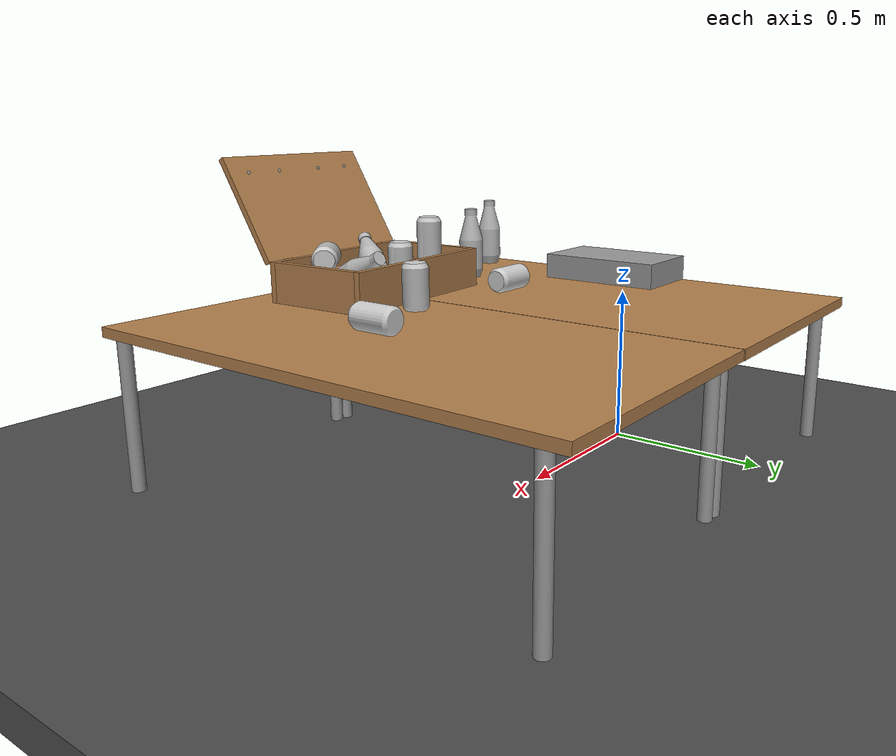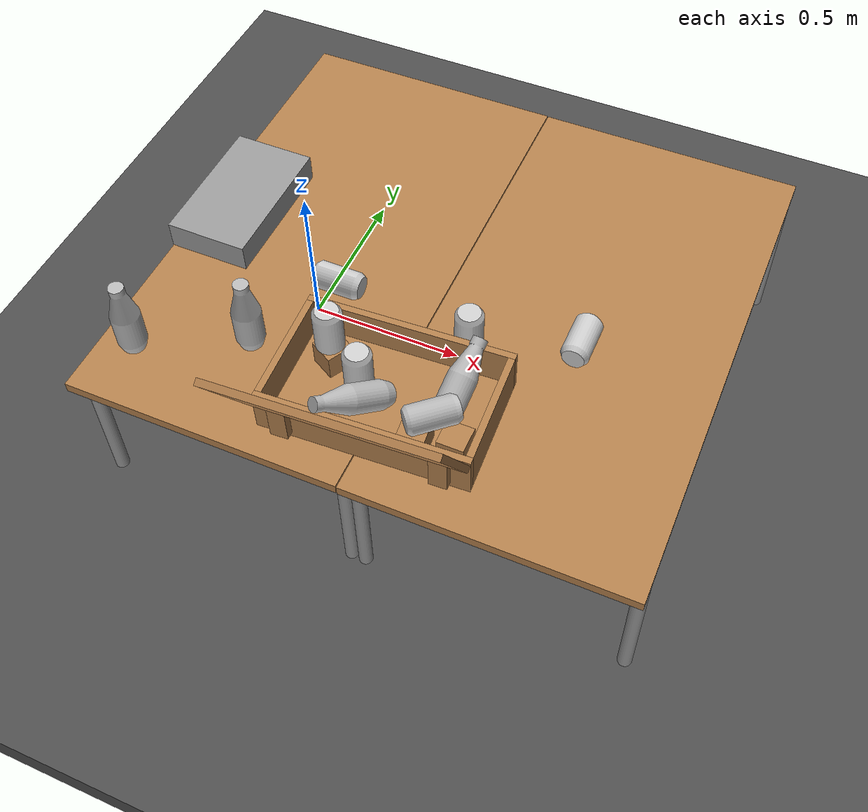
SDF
<sdf version="1.6">
 <world name="default">
  <model name="ground_plane">
   <static>1</static>
   <link name="link">
    <collision name="collision">
     <geometry><plane><normal>0 0 1</normal><size>100 100</size></plane></geometry>
     <surface><friction><ode><mu>100</mu><mu2>50</mu2></ode></friction></surface>
    </collision>
    <visual name="visual">
     <cast_shadows>0</cast_shadows>
     <geometry><plane><normal>0 0 1</normal><size>100 100</size></plane></geometry>
     <material>
      <script><uri>file://media/materials/scripts/gazebo.material</uri><name>Gazebo/Grey</name></script>
     </material>
    </visual>
   </link>
  </model>
  <model name="table">
   <static>1</static>
   <link name="link">
    <collision name="surface">
     <pose>0 0 0.5 0 -0 0</pose>
     <geometry><box><size>1.5 0.8 0.03</size></box></geometry>
     <surface><friction><ode><mu>0.6</mu><mu2>0.6</mu2></ode></friction></surface>
    </collision>
    <visual name="visual1">
     <pose>0 0 0.5 0 -0 0</pose>
     <geometry><box><size>1.5 0.8 0.03</size></box></geometry>
     <material>
      <script><uri>file://media/materials/scripts/gazebo.material</uri><name>Gazebo/Wood</name></script>
     </material>
    </visual>
    <collision name="front_left_leg">
     <pose>0.68 0.38 0.25 0 -0 0</pose>
     <geometry><cylinder><radius>0.02</radius><length>0.5</length></cylinder></geometry>
    </collision>
    <visual name="front_left_leg">
     <pose>0.68 0.38 0.25 0 -0 0</pose>
     <geometry><cylinder><radius>0.02</radius><length>0.5</length></cylinder></geometry>
     <material>
      <script><uri>file://media/materials/scripts/gazebo.material</uri><name>Gazebo/Grey</name></script>
     </material>
    </visual>
    <collision name="front_right_leg">
     <pose>0.68 -0.38 0.25 0 -0 0</pose>
     <geometry><cylinder><radius>0.02</radius><length>0.5</length></cylinder></geometry>
    </collision>
    <visual name="front_right_leg">
     <pose>0.68 -0.38 0.25 0 -0 0</pose>
     <geometry><cylinder><radius>0.02</radius><length>0.5</length></cylinder></geometry>
     <material>
      <script><uri>file://media/materials/scripts/gazebo.material</uri><name>Gazebo/Grey</name></script>
     </material>
    </visual>
    <collision name="back_right_leg">
     <pose>-0.68 -0.38 0.25 0 -0 0</pose>
     <geometry><cylinder><radius>0.02</radius><length>0.5</length></cylinder></geometry>
    </collision>
    <visual name="back_right_leg">
     <pose>-0.68 -0.38 0.25 0 -0 0</pose>
     <geometry><cylinder><radius>0.02</radius><length>0.5</length></cylinder></geometry>
     <material>
      <script><uri>file://media/materials/scripts/gazebo.material</uri><name>Gazebo/Grey</name></script>
     </material>
    </visual>
    <collision name="back_left_leg">
     <pose>-0.68 0.38 0.25 0 -0 0</pose>
     <geometry><cylinder><radius>0.02</radius><length>0.5</length></cylinder></geometry>
    </collision>
    <visual name="back_left_leg">
     <pose>-0.68 0.38 0.25 0 -0 0</pose>
     <geometry><cylinder><radius>0.02</radius><length>0.5</length></cylinder></geometry>
     <material>
      <script><uri>file://media/materials/scripts/gazebo.material</uri><name>Gazebo/Grey</name></script>
     </material>
    </visual>
   </link>
   <pose>0.141486 -0.111698 0 0 -0 1.57274</pose>
  </model>
  <model name="asphalt_plane">
   <static>1</static>
   <link name="link">
    <collision name="collision"><geometry><box><size>20 20 0.1</size></box></geometry></collision>
    <visual name="visual">
     <cast_shadows>0</cast_shadows>
     <geometry><box><size>20 20 0.1</size></box></geometry>
     <material>
      <script>
       <uri>model://asphalt_plane/materials/scripts</uri>
       <uri>model://asphalt_plane/materials/textures</uri>
       <name>vrc/asphalt</name>
      </script>
     </material>
    </visual>
   </link>
   <pose>-0.591173 -0.829147 0 0 -0 0</pose>
  </model>
  <model name="unit_box">
   <static>1</static>
   <pose>-0.139333 -0.111698 0.545396 0 -0 0</pose>
   <link name="link">
    <inertial>
     <mass>1</mass>
     <inertia>
      <ixx>0.166667</ixx>
      <ixy>0</ixy>
      <ixz>0</ixz>
      <iyy>0.166667</iyy>
      <iyz>0</iyz>
      <izz>0.166667</izz>
     </inertia>
    </inertial>
    <visual name="visual">
     <geometry><box><size>0.241277 0.407907 0.103712</size></box></geometry>
     <material>
      <script><name>Gazebo/Grey</name><uri>file://media/materials/scripts/gazebo.material</uri></script>
     </material>
    </visual>
   </link>
   <scale>0.241277 0.407907 0.103712</scale>
   <pose>-0.139333 -0.111698 0.545396 0 -0 0</pose>
  </model>
  <model name="wooden_case">
   <link name="base">
    <pose>0 0 0.024 0 -0 0</pose>
    <inertial>
     <pose>-0.022184 0 0.171592 0 -0 0</pose>
     <mass>3.96264</mass>
     <inertia>
      <ixx>0.213536</ixx>
      <ixy>0</ixy>
      <ixz>0.000779377</ixz>
      <iyy>0.0708943</iyy>
      <iyz>0</iyz>
      <izz>0.154604</izz>
     </inertia>
    </inertial>
    <collision name="collision_back">
     <pose>-0.053975 0 0.1778 0 -0 0</pose>
     <geometry><box><size>0.01905 0.5461 0.3175</size></box></geometry>
     <surface>
      <contact>
       <poissons_ratio>0.347</poissons_ratio>
       <elastic_modulus>8.8e+09</elastic_modulus>
       <ode><kp>100000</kp><kd>100</kd><max_vel>100</max_vel><min_depth>0.001</min_depth></ode>
      </contact>
      <friction>
       <ode><mu>3</mu><mu2>3</mu2></ode>
       <torsional>
        <coefficient>1</coefficient>
        <use_patch_radius>0</use_patch_radius>
        <surface_radius>0.01</surface_radius>
       </torsional>
      </friction>
     </surface>
    </collision>
    <visual name="visual_back">
     <pose>-0.053975 0 0.1778 0 -0 0</pose>
     <geometry><box><size>0.01905 0.5461 0.3175</size></box></geometry>
     <material>
      <script><uri>file://media/materials/scripts/gazebo.material</uri><name>Gazebo/Wood</name></script>
     </material>
    </visual>
    <collision name="collision_bottom">
     <pose>0 0 0.009525 0 -0 0</pose>
     <geometry><box><size>0.127 0.5842 0.01905</size></box></geometry>
     <surface>
      <contact>
       <poissons_ratio>0.347</poissons_ratio>
       <elastic_modulus>8.8e+09</elastic_modulus>
       <ode><kp>100000</kp><kd>100</kd><max_vel>100</max_vel><min_depth>0.001</min_depth></ode>
      </contact>
      <friction>
       <torsional>
        <coefficient>1</coefficient>
        <use_patch_radius>0</use_patch_radius>
        <surface_radius>0.01</surface_radius>
       </torsional>
      </friction>
     </surface>
    </collision>
    <visual name="visual_bottom">
     <pose>0 0 0.009525 0 -0 0</pose>
     <geometry><box><size>0.127 0.5842 0.01905</size></box></geometry>
     <material>
      <script><uri>file://media/materials/scripts/gazebo.material</uri><name>Gazebo/Wood</name></script>
     </material>
    </visual>
    <collision name="collision_top">
     <pose>0 0 0.346075 0 -0 0</pose>
     <geometry><box><size>0.127 0.5842 0.01905</size></box></geometry>
     <surface>
      <contact>
       <poissons_ratio>0.347</poissons_ratio>
       <elastic_modulus>8.8e+09</elastic_modulus>
       <ode><kp>100000</kp><kd>100</kd><max_vel>100</max_vel><min_depth>0.001</min_depth></ode>
      </contact>
      <friction>
       <torsional>
        <coefficient>1</coefficient>
        <use_patch_radius>0</use_patch_radius>
        <surface_radius>0.01</surface_radius>
       </torsional>
      </friction>
     </surface>
    </collision>
    <visual name="visual_top">
     <pose>0 0 0.346075 0 -0 0</pose>
     <geometry><box><size>0.127 0.5842 0.01905</size></box></geometry>
     <material>
      <script><uri>file://media/materials/scripts/gazebo.material</uri><name>Gazebo/Wood</name></script>
     </material>
    </visual>
    <collision name="collision_left">
     <pose>0 -0.282575 0.1778 0 -0 0</pose>
     <geometry><box><size>0.127 0.01905 0.3175</size></box></geometry>
     <surface>
      <contact>
       <poissons_ratio>0.347</poissons_ratio>
       <elastic_modulus>8.8e+09</elastic_modulus>
       <ode><kp>100000</kp><kd>100</kd><max_vel>100</max_vel><min_depth>0.001</min_depth></ode>
      </contact>
      <friction>
       <torsional>
        <coefficient>1</coefficient>
        <use_patch_radius>0</use_patch_radius>
        <surface_radius>0.01</surface_radius>
       </torsional>
      </friction>
     </surface>
    </collision>
    <visual name="visual_left">
     <pose>0 -0.282575 0.1778 0 -0 0</pose>
     <geometry><box><size>0.127 0.01905 0.3175</size></box></geometry>
     <material>
      <script><uri>file://media/materials/scripts/gazebo.material</uri><name>Gazebo/Wood</name></script>
     </material>
    </visual>
    <collision name="collision_right">
     <pose>0 0.282575 0.1778 0 -0 0</pose>
     <geometry><box><size>0.127 0.01905 0.3175</size></box></geometry>
     <surface>
      <contact>
       <poissons_ratio>0.347</poissons_ratio>
       <elastic_modulus>8.8e+09</elastic_modulus>
       <ode><kp>100000</kp><kd>100</kd><max_vel>100</max_vel><min_depth>0.001</min_depth></ode>
      </contact>
      <friction>
       <torsional>
        <coefficient>1</coefficient>
        <use_patch_radius>0</use_patch_radius>
        <surface_radius>0.01</surface_radius>
       </torsional>
      </friction>
     </surface>
    </collision>
    <visual name="visual_right">
     <pose>0 0.282575 0.1778 0 -0 0</pose>
     <geometry><box><size>0.127 0.01905 0.3175</size></box></geometry>
     <material>
      <script><uri>file://media/materials/scripts/gazebo.material</uri><name>Gazebo/Wood</name></script>
     </material>
    </visual>
    <collision name="collision_block_left">
     <pose>0.0095 -0.2151 -0.012 0 -0 0</pose>
     <geometry><box><size>0.108 0.05 0.024</size></box></geometry>
     <surface>
      <contact>
       <poissons_ratio>0.347</poissons_ratio>
       <elastic_modulus>8.8e+09</elastic_modulus>
       <ode><kp>100000</kp><kd>100</kd><max_vel>100</max_vel><min_depth>0.001</min_depth></ode>
      </contact>
      <friction>
       <torsional>
        <coefficient>1</coefficient>
        <use_patch_radius>0</use_patch_radius>
        <surface_radius>0.01</surface_radius>
       </torsional>
      </friction>
     </surface>
    </collision>
    <visual name="visual_block_left">
     <pose>0.0095 -0.2151 -0.012 0 -0 0</pose>
     <geometry><box><size>0.108 0.05 0.024</size></box></geometry>
     <material>
      <script><uri>file://media/materials/scripts/gazebo.material</uri><name>Gazebo/Wood</name></script>
     </material>
    </visual>
    <collision name="collision_block_right">
     <pose>0.0095 0.2151 -0.012 0 -0 0</pose>
     <geometry><box><size>0.108 0.05 0.024</size></box></geometry>
     <surface>
      <contact>
       <poissons_ratio>0.347</poissons_ratio>
       <elastic_modulus>8.8e+09</elastic_modulus>
       <ode><kp>100000</kp><kd>100</kd><max_vel>100</max_vel><min_depth>0.001</min_depth></ode>
      </contact>
      <friction>
       <torsional>
        <coefficient>1</coefficient>
        <use_patch_radius>0</use_patch_radius>
        <surface_radius>0.01</surface_radius>
       </torsional>
      </friction>
     </surface>
    </collision>
    <visual name="visual_block_right">
     <pose>0.0095 0.2151 -0.012 0 -0 0</pose>
     <geometry><box><size>0.108 0.05 0.024</size></box></geometry>
     <material>
      <script><uri>file://media/materials/scripts/gazebo.material</uri><name>Gazebo/Wood</name></script>
     </material>
    </visual>
   </link>
   <link name="lid">
    <pose>0.210430 0.000001 -0.076823 0 0.523601 0</pose>
    <inertial>
     <mass>1.97874</mass>
     <inertia>
      <ixx>0.0563367</ixx>
      <ixy>0</ixy>
      <ixz>0</ixz>
      <iyy>0.020911</iyy>
      <iyz>0</iyz>
      <izz>0.0771281</izz>
     </inertia>
    </inertial>
    <collision name="collision">
     <geometry><box><size>0.3556 0.5842 0.01905</size></box></geometry>
     <surface>
      <contact>
       <poissons_ratio>0.347</poissons_ratio>
       <elastic_modulus>8.8e+09</elastic_modulus>
       <ode><kp>100000</kp><kd>100</kd><max_vel>100</max_vel><min_depth>0.001</min_depth></ode>
      </contact>
      <friction>
       <torsional>
        <coefficient>1</coefficient>
        <use_patch_radius>0</use_patch_radius>
        <surface_radius>0.01</surface_radius>
       </torsional>
      </friction>
     </surface>
    </collision>
    <visual name="visual">
     <geometry><box><size>0.3556 0.5842 0.01905</size></box></geometry>
     <material>
      <script><uri>file://media/materials/scripts/gazebo.material</uri><name>Gazebo/Wood</name></script>
     </material>
    </visual>
    <visual name="tee_nut_1">
     <pose>0.122 -0.216 0 0 -0 0</pose>
     <geometry><cylinder><radius>0.00635</radius><length>0.0192405</length></cylinder></geometry>
     <material>
      <script><uri>file://media/materials/scripts/gazebo.material</uri><name>Gazebo/Grey</name></script>
     </material>
    </visual>
    <visual name="tee_nut_2">
     <pose>0.122 -0.088 0 0 -0 0</pose>
     <geometry><cylinder><radius>0.00635</radius><length>0.0192405</length></cylinder></geometry>
     <material>
      <script><uri>file://media/materials/scripts/gazebo.material</uri><name>Gazebo/Grey</name></script>
     </material>
    </visual>
    <visual name="tee_nut_3">
     <pose>0.122 0.088 0 0 -0 0</pose>
     <geometry><cylinder><radius>0.00635</radius><length>0.0192405</length></cylinder></geometry>
     <material>
      <script><uri>file://media/materials/scripts/gazebo.material</uri><name>Gazebo/Grey</name></script>
     </material>
    </visual>
    <visual name="tee_nut_4">
     <pose>0.122 0.216 0 0 -0 0</pose>
     <geometry><cylinder><radius>0.00635</radius><length>0.0192405</length></cylinder></geometry>
     <material>
      <script><uri>file://media/materials/scripts/gazebo.material</uri><name>Gazebo/Grey</name></script>
     </material>
    </visual>
   </link>
   <joint name="lid_hinge" type="revolute">
    <pose>-0.1778 0 0.01905 0 -0 0</pose>
    <parent>base</parent>
    <child>lid</child>
    <axis>
     <xyz>0 1 0</xyz>
     <limit><upper>0.523599</upper><lower>-1.5708</lower></limit>
     <use_parent_model_frame>0</use_parent_model_frame>
     <dynamics><spring_reference>0</spring_reference><spring_stiffness>0</spring_stiffness></dynamics>
    </axis>
   </joint>
   <pose>0.566348 -0.782215 0.577462 -0.072879 -1.57073 -1.44241</pose>
  </model>
  <model name="table_clone">
   <static>1</static>
   <link name="link">
    <collision name="surface">
     <pose>0 0 0.5 0 -0 0</pose>
     <geometry><box><size>1.5 0.8 0.03</size></box></geometry>
     <surface><friction><ode><mu>0.6</mu><mu2>0.6</mu2></ode></friction></surface>
    </collision>
    <visual name="visual1">
     <pose>0 0 0.5 0 -0 0</pose>
     <geometry><box><size>1.5 0.8 0.03</size></box></geometry>
     <material>
      <script><uri>file://media/materials/scripts/gazebo.material</uri><name>Gazebo/Wood</name></script>
     </material>
    </visual>
    <collision name="front_left_leg">
     <pose>0.68 0.38 0.25 0 -0 0</pose>
     <geometry><cylinder><radius>0.02</radius><length>0.5</length></cylinder></geometry>
    </collision>
    <visual name="front_left_leg">
     <pose>0.68 0.38 0.25 0 -0 0</pose>
     <geometry><cylinder><radius>0.02</radius><length>0.5</length></cylinder></geometry>
     <material>
      <script><uri>file://media/materials/scripts/gazebo.material</uri><name>Gazebo/Grey</name></script>
     </material>
    </visual>
    <collision name="front_right_leg">
     <pose>0.68 -0.38 0.25 0 -0 0</pose>
     <geometry><cylinder><radius>0.02</radius><length>0.5</length></cylinder></geometry>
    </collision>
    <visual name="front_right_leg">
     <pose>0.68 -0.38 0.25 0 -0 0</pose>
     <geometry><cylinder><radius>0.02</radius><length>0.5</length></cylinder></geometry>
     <material>
      <script><uri>file://media/materials/scripts/gazebo.material</uri><name>Gazebo/Grey</name></script>
     </material>
    </visual>
    <collision name="back_right_leg">
     <pose>-0.68 -0.38 0.25 0 -0 0</pose>
     <geometry><cylinder><radius>0.02</radius><length>0.5</length></cylinder></geometry>
    </collision>
    <visual name="back_right_leg">
     <pose>-0.68 -0.38 0.25 0 -0 0</pose>
     <geometry><cylinder><radius>0.02</radius><length>0.5</length></cylinder></geometry>
     <material>
      <script><uri>file://media/materials/scripts/gazebo.material</uri><name>Gazebo/Grey</name></script>
     </material>
    </visual>
    <collision name="back_left_leg">
     <pose>-0.68 0.38 0.25 0 -0 0</pose>
     <geometry><cylinder><radius>0.02</radius><length>0.5</length></cylinder></geometry>
    </collision>
    <visual name="back_left_leg">
     <pose>-0.68 0.38 0.25 0 -0 0</pose>
     <geometry><cylinder><radius>0.02</radius><length>0.5</length></cylinder></geometry>
     <material>
      <script><uri>file://media/materials/scripts/gazebo.material</uri><name>Gazebo/Grey</name></script>
     </material>
    </visual>
   </link>
   <pose>0.9444 -0.111698 0 0 -0 1.57274</pose>
  </model>
  <model name="Blue Bottle">
   <static>0</static>
   <link name="link">
    <inertial>
     <mass>0.3</mass>
     <inertia>
      <ixx>0.00055575</ixx>
      <ixy>0</ixy>
      <ixz>0</ixz>
      <iyy>0.00055575</iyy>
      <iyz>0</iyz>
      <izz>0.0001755</izz>
     </inertia>
    </inertial>
    <collision name="collision">
     <geometry>
      <mesh><uri>model://blueBottle/meshes/bottleBlue.dae</uri><scale>0.041 0.041 0.041</scale></mesh>
     </geometry>
     <surface>
      <friction><ode><mu>3</mu><mu2>3</mu2></ode></friction>
      <contact><ode><kp>1e+07</kp><kd>1</kd><min_depth>0.001</min_depth><max_vel>0.5</max_vel></ode></contact>
     </surface>
    </collision>
    <visual name="visual">
     <geometry>
      <mesh><uri>model://blueBottle/meshes/bottleBlue.dae</uri><scale>0.041 0.041 0.041</scale></mesh>
     </geometry>
    </visual>
   </link>
   <pose>-0.159338 -0.677185 0.633867 0.00737 -0.000922 -0.001633</pose>
  </model>
  <model name="Red Can_clone_clone">
   <static>0</static>
   <link name="link">
    <inertial>
     <mass>0.3</mass>
     <inertia>
      <ixx>0.00055575</ixx>
      <ixy>0</ixy>
      <ixz>0</ixz>
      <iyy>0.00055575</iyy>
      <iyz>0</iyz>
      <izz>0.0001755</izz>
     </inertia>
    </inertial>
    <collision name="collision">
     <geometry><mesh><uri>model://redCan/meshes/canRed.dae</uri><scale>0.04 0.04 0.04</scale></mesh></geometry>
     <surface>
      <friction><ode><mu>3</mu><mu2>3</mu2></ode></friction>
      <contact><ode><kp>1e+07</kp><kd>1</kd><min_depth>0.001</min_depth><max_vel>0.5</max_vel></ode></contact>
     </surface>
    </collision>
    <visual name="visual">
     <geometry><mesh><uri>model://redCan/meshes/canRed.dae</uri><scale>0.04 0.04 0.04</scale></mesh></geometry>
    </visual>
   </link>
   <pose>0.955482 -0.210668 0.554818 1.57186 -0.076312 0.000134</pose>
  </model>
  <model name="Green Can_clone">
   <static>0</static>
   <link name="link">
    <inertial>
     <mass>0.3</mass>
     <inertia>
      <ixx>0.00055575</ixx>
      <ixy>0</ixy>
      <ixz>0</ixz>
      <iyy>0.00055575</iyy>
      <iyz>0</iyz>
      <izz>0.0001755</izz>
     </inertia>
    </inertial>
    <collision name="collision">
     <geometry><mesh><uri>model://greenCan/meshes/canGreen.dae</uri><scale>0.04 0.04 0.04</scale></mesh></geometry>
     <surface>
      <friction><ode><mu>3</mu><mu2>3</mu2></ode></friction>
      <contact><ode><kp>1e+07</kp><kd>1</kd><min_depth>0.001</min_depth><max_vel>0.5</max_vel></ode></contact>
     </surface>
    </collision>
    <visual name="visual">
     <geometry><mesh><uri>model://greenCan/meshes/canGreen.dae</uri><scale>0.04 0.04 0.04</scale></mesh></geometry>
    </visual>
   </link>
   <pose>0.262984 -0.278705 0.554807 1.57079 1.47262 1.57085</pose>
  </model>
  <model name="Green Can_clone_1">
   <static>0</static>
   <link name="link">
    <inertial>
     <mass>0.3</mass>
     <inertia>
      <ixx>0.00055575</ixx>
      <ixy>0</ixy>
      <ixz>0</ixz>
      <iyy>0.00055575</iyy>
      <iyz>0</iyz>
      <izz>0.0001755</izz>
     </inertia>
    </inertial>
    <collision name="collision">
     <geometry><mesh><uri>model://greenCan/meshes/canGreen.dae</uri><scale>0.04 0.04 0.04</scale></mesh></geometry>
     <surface>
      <friction><ode><mu>3</mu><mu2>3</mu2></ode></friction>
      <contact><ode><kp>1e+07</kp><kd>1</kd><min_depth>0.001</min_depth><max_vel>0.5</max_vel></ode></contact>
     </surface>
    </collision>
    <visual name="visual">
     <geometry><mesh><uri>model://greenCan/meshes/canGreen.dae</uri><scale>0.04 0.04 0.04</scale></mesh></geometry>
    </visual>
   </link>
   <pose>0.368093 -0.527898 0.676815 3.8e-05 -0.000117 -2.99827</pose>
  </model>
  <model name="Blue Bottle_clone">
   <static>0</static>
   <link name="link">
    <inertial>
     <mass>0.3</mass>
     <inertia>
      <ixx>0.00055575</ixx>
      <ixy>0</ixy>
      <ixz>0</ixz>
      <iyy>0.00055575</iyy>
      <iyz>0</iyz>
      <izz>0.0001755</izz>
     </inertia>
    </inertial>
    <collision name="collision">
     <geometry>
      <mesh><uri>model://blueBottle/meshes/bottleBlue.dae</uri><scale>0.041 0.041 0.041</scale></mesh>
     </geometry>
     <surface>
      <friction><ode><mu>3</mu><mu2>3</mu2></ode></friction>
      <contact><ode><kp>1e+07</kp><kd>1</kd><min_depth>0.001</min_depth><max_vel>0.5</max_vel></ode></contact>
     </surface>
    </collision>
    <visual name="visual">
     <geometry>
      <mesh><uri>model://blueBottle/meshes/bottleBlue.dae</uri><scale>0.041 0.041 0.041</scale></mesh>
     </geometry>
    </visual>
   </link>
   <pose>0.127785 -0.541119 0.63385 0.001546 -0.001557 1.74886</pose>
  </model>
  <model name="Yellow Can_clone">
   <static>0</static>
   <link name="link">
    <inertial>
     <mass>0.3</mass>
     <inertia>
      <ixx>0.00055575</ixx>
      <ixy>0</ixy>
      <ixz>0</ixz>
      <iyy>0.00055575</iyy>
      <iyz>0</iyz>
      <izz>0.0001755</izz>
     </inertia>
    </inertial>
    <collision name="collision">
     <geometry>
      <mesh><uri>model://yellowCan/meshes/canYellow.dae</uri><scale>0.04 0.04 0.04</scale></mesh>
     </geometry>
     <surface>
      <friction><ode><mu>3</mu><mu2>3</mu2></ode></friction>
      <contact><ode><kp>1e+07</kp><kd>1</kd><min_depth>0.001</min_depth><max_vel>0.5</max_vel></ode></contact>
     </surface>
    </collision>
    <visual name="visual">
     <geometry>
      <mesh><uri>model://yellowCan/meshes/canYellow.dae</uri><scale>0.04 0.04 0.04</scale></mesh>
     </geometry>
    </visual>
   </link>
   <pose>0.713645 -0.649462 0.645817 -1.57077 0.097723 -0.844081</pose>
  </model>
  <model name="Yellow Can_clone_0">
   <static>0</static>
   <link name="link">
    <inertial>
     <mass>0.3</mass>
     <inertia>
      <ixx>0.00055575</ixx>
      <ixy>0</ixy>
      <ixz>0</ixz>
      <iyy>0.00055575</iyy>
      <iyz>0</iyz>
      <izz>0.0001755</izz>
     </inertia>
    </inertial>
    <collision name="collision">
     <geometry>
      <mesh><uri>model://yellowCan/meshes/canYellow.dae</uri><scale>0.04 0.04 0.04</scale></mesh>
     </geometry>
     <surface>
      <friction><ode><mu>3</mu><mu2>3</mu2></ode></friction>
      <contact><ode><kp>1e+07</kp><kd>1</kd><min_depth>0.001</min_depth><max_vel>0.5</max_vel></ode></contact>
     </surface>
    </collision>
    <visual name="visual">
     <geometry>
      <mesh><uri>model://yellowCan/meshes/canYellow.dae</uri><scale>0.04 0.04 0.04</scale></mesh>
     </geometry>
    </visual>
   </link>
   <pose>0.467122 -0.566538 0.602817 3.5e-05 -0.00012 -2.95068</pose>
  </model>
  <model name="Yellow Can_clone_1">
   <static>0</static>
   <link name="link">
    <inertial>
     <mass>0.3</mass>
     <inertia>
      <ixx>0.00055575</ixx>
      <ixy>0</ixy>
      <ixz>0</ixz>
      <iyy>0.00055575</iyy>
      <iyz>0</iyz>
      <izz>0.0001755</izz>
     </inertia>
    </inertial>
    <collision name="collision">
     <geometry>
      <mesh><uri>model://yellowCan/meshes/canYellow.dae</uri><scale>0.04 0.04 0.04</scale></mesh>
     </geometry>
     <surface>
      <friction><ode><mu>3</mu><mu2>3</mu2></ode></friction>
      <contact><ode><kp>1e+07</kp><kd>1</kd><min_depth>0.001</min_depth><max_vel>0.5</max_vel></ode></contact>
     </surface>
    </collision>
    <visual name="visual">
     <geometry>
      <mesh><uri>model://yellowCan/meshes/canYellow.dae</uri><scale>0.04 0.04 0.04</scale></mesh>
     </geometry>
    </visual>
   </link>
   <pose>0.673578 -0.319502 0.58568 0.005227 -0.009996 2.19776</pose>
  </model>
  <model name="Yellow Bottle_clone">
   <static>0</static>
   <link name="link">
    <inertial>
     <mass>0.3</mass>
     <inertia>
      <ixx>0.00055575</ixx>
      <ixy>0</ixy>
      <ixz>0</ixz>
      <iyy>0.00055575</iyy>
      <iyz>0</iyz>
      <izz>0.0001755</izz>
     </inertia>
    </inertial>
    <collision name="collision">
     <geometry>
      <mesh><uri>model://yellowBottle/meshes/bottleYellowBlue.dae</uri><scale>0.041 0.041 0.041</scale></mesh>
     </geometry>
     <surface>
      <friction><ode><mu>3</mu><mu2>3</mu2></ode></friction>
      <contact><ode><kp>1e+07</kp><kd>1</kd><min_depth>0.001</min_depth><max_vel>0.5</max_vel></ode></contact>
     </surface>
    </collision>
    <visual name="visual">
     <geometry>
      <mesh><uri>model://yellowBottle/meshes/bottleYellowBlue.dae</uri><scale>0.041 0.041 0.041</scale></mesh>
     </geometry>
    </visual>
   </link>
   <pose>0.729431 -0.50451 0.614691 -0.51348 -1.01755 -1.06892</pose>
  </model>
  <model name="Yellow Bottle_clone_0">
   <static>0</static>
   <link name="link">
    <inertial>
     <mass>0.3</mass>
     <inertia>
      <ixx>0.00055575</ixx>
      <ixy>0</ixy>
      <ixz>0</ixz>
      <iyy>0.00055575</iyy>
      <iyz>0</iyz>
      <izz>0.0001755</izz>
     </inertia>
    </inertial>
    <collision name="collision">
     <geometry>
      <mesh><uri>model://yellowBottle/meshes/bottleYellowBlue.dae</uri><scale>0.041 0.041 0.041</scale></mesh>
     </geometry>
     <surface>
      <friction><ode><mu>3</mu><mu2>3</mu2></ode></friction>
      <contact><ode><kp>1e+07</kp><kd>1</kd><min_depth>0.001</min_depth><max_vel>0.5</max_vel></ode></contact>
     </surface>
    </collision>
    <visual name="visual">
     <geometry>
      <mesh><uri>model://yellowBottle/meshes/bottleYellowBlue.dae</uri><scale>0.041 0.041 0.041</scale></mesh>
     </geometry>
    </visual>
   </link>
   <pose>0.499142 -0.666927 0.614682 -0.983276 0.599597 2.90766</pose>
  </model>
  <model name="wood_cube_7_5cm_clone">
   <link name="link">
    <pose>0 0 0.0375 0 -0 0</pose>
    <inertial>
     <mass>0.2249</mass>
     <inertia>
      <ixx>0.000210844</ixx>
      <ixy>0</ixy>
      <ixz>0</ixz>
      <iyy>0.000210844</iyy>
      <iyz>0</iyz>
      <izz>0.000210844</izz>
     </inertia>
    </inertial>
    <collision name="collision">
     <geometry><box><size>0.075 0.075 0.075</size></box></geometry>
     <surface>
      <contact>
       <poissons_ratio>0.347</poissons_ratio>
       <elastic_modulus>8.8e+09</elastic_modulus>
       <ode><kp>100000</kp><kd>100</kd><max_vel>100</max_vel><min_depth>0.001</min_depth></ode>
      </contact>
      <friction>
       <torsional>
        <coefficient>1</coefficient>
        <use_patch_radius>0</use_patch_radius>
        <surface_radius>0.01</surface_radius>
       </torsional>
      </friction>
     </surface>
    </collision>
    <visual name="visual">
     <geometry><box><size>0.075 0.075 0.075</size></box></geometry>
     <material>
      <script><uri>file://media/materials/scripts/gazebo.material</uri><name>Gazebo/Wood</name></script>
     </material>
    </visual>
   </link>
   <pose>0.371647 -0.526178 0.607025 -3.14155 -6.1e-05 1.07313</pose>
  </model>
  <model name="wood_cube_7_5cm_clone_0">
   <link name="link">
    <pose>0 0 0.0375 0 -0 0</pose>
    <inertial>
     <mass>0.2249</mass>
     <inertia>
      <ixx>0.000210844</ixx>
      <ixy>0</ixy>
      <ixz>0</ixz>
      <iyy>0.000210844</iyy>
      <iyz>0</iyz>
      <izz>0.000210844</izz>
     </inertia>
    </inertial>
    <collision name="collision">
     <geometry><box><size>0.075 0.075 0.075</size></box></geometry>
     <surface>
      <contact>
       <poissons_ratio>0.347</poissons_ratio>
       <elastic_modulus>8.8e+09</elastic_modulus>
       <ode><kp>100000</kp><kd>100</kd><max_vel>100</max_vel><min_depth>0.001</min_depth></ode>
      </contact>
      <friction>
       <torsional>
        <coefficient>1</coefficient>
        <use_patch_radius>0</use_patch_radius>
        <surface_radius>0.01</surface_radius>
       </torsional>
      </friction>
     </surface>
    </collision>
    <visual name="visual">
     <geometry><box><size>0.075 0.075 0.075</size></box></geometry>
     <material>
      <script><uri>file://media/materials/scripts/gazebo.material</uri><name>Gazebo/Wood</name></script>
     </material>
    </visual>
   </link>
   <pose>0.743119 -0.65928 0.569513 1.10812 1.57074 1.10854</pose>
  </model>
  <model name="wood_cube_7_5cm_clone_0_clone">
   <link name="link">
    <pose>0 0 0.0375 0 -0 0</pose>
    <inertial>
     <mass>0.2249</mass>
     <inertia>
      <ixx>0.000210844</ixx>
      <ixy>0</ixy>
      <ixz>0</ixz>
      <iyy>0.000210844</iyy>
      <iyz>0</iyz>
      <izz>0.000210844</izz>
     </inertia>
    </inertial>
    <collision name="collision">
     <geometry><box><size>0.075 0.075 0.075</size></box></geometry>
     <surface>
      <contact>
       <poissons_ratio>0.347</poissons_ratio>
       <elastic_modulus>8.8e+09</elastic_modulus>
       <ode><kp>100000</kp><kd>100</kd><max_vel>100</max_vel><min_depth>0.001</min_depth></ode>
      </contact>
      <friction>
       <torsional>
        <coefficient>1</coefficient>
        <use_patch_radius>0</use_patch_radius>
        <surface_radius>0.01</surface_radius>
       </torsional>
      </friction>
     </surface>
    </collision>
    <visual name="visual">
     <geometry><box><size>0.075 0.075 0.075</size></box></geometry>
     <material>
      <script><uri>file://media/materials/scripts/gazebo.material</uri><name>Gazebo/Wood</name></script>
     </material>
    </visual>
   </link>
   <pose>0.640775 -0.6814 0.569514 2.07199 1.57074 2.17327</pose>
  </model>
 </world>
</sdf>
